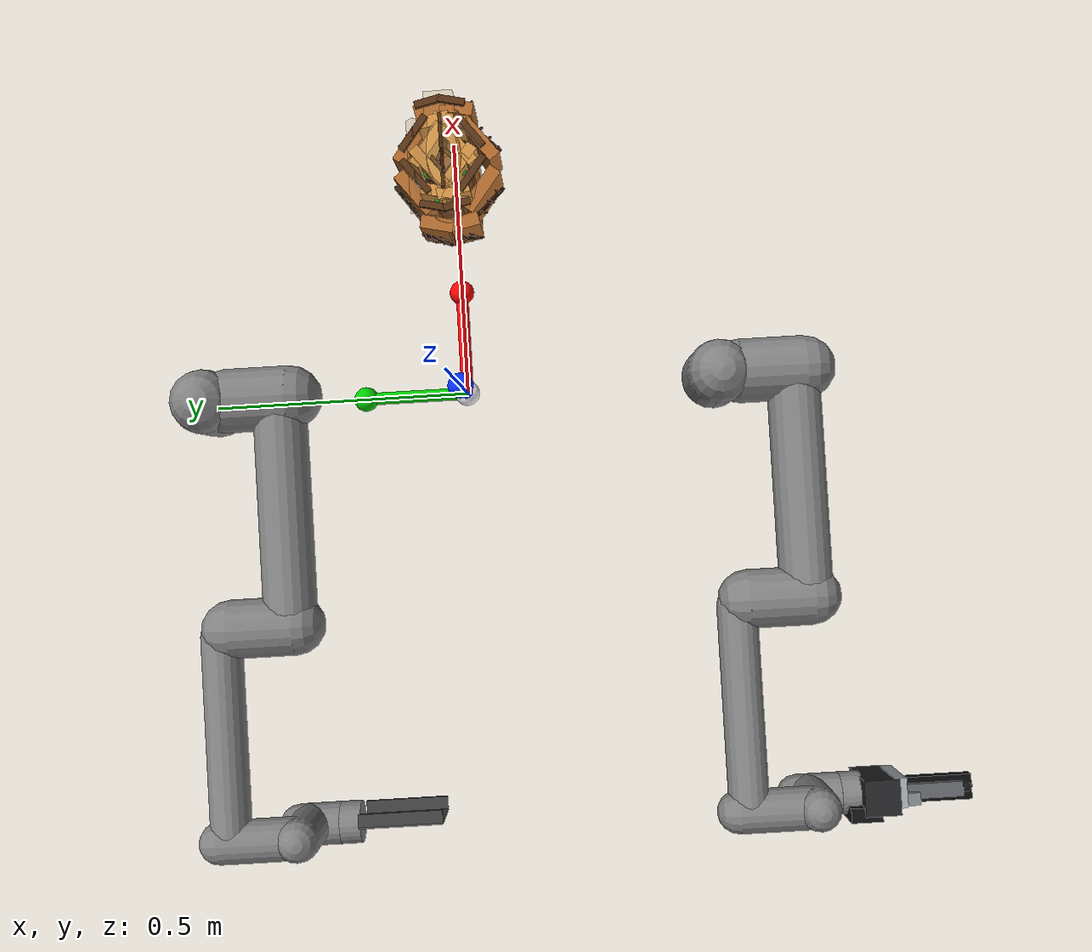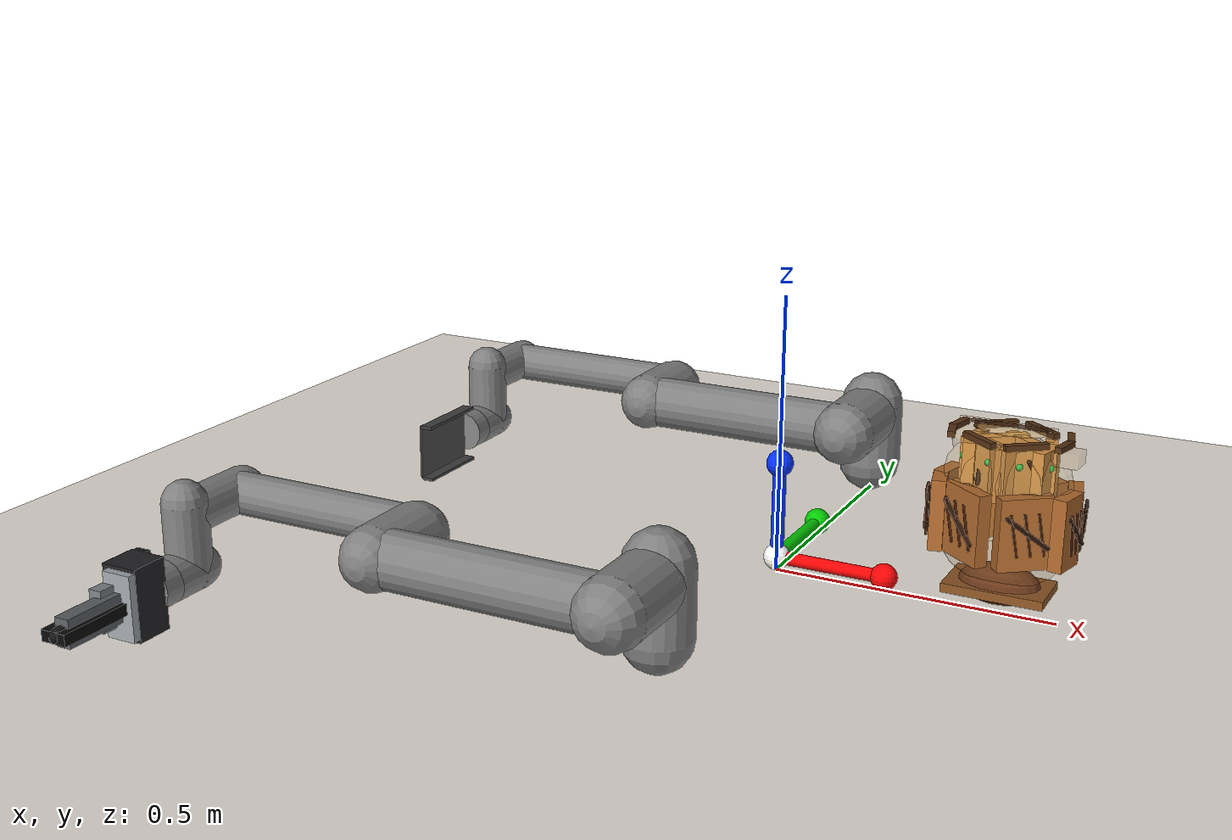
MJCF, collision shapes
<mujoco model="dual_ur5_shape_coupled_sack_underfilled">
  <compiler angle="degree" meshdir="D:\Michael\2025\01.Research\01.Parceldetection\16.Pybullet\mujoco_menagerie\universal_robots_ur5e\assets" autolimits="true" inertiafromgeom="true" />
  <option integrator="implicitfast" timestep="0.001000" gravity="0 0 -9.81" solver="Newton" iterations="120" ls_iterations="30" jacobian="sparse" cone="elliptic" impratio="10.0" />
  <size memory="512M" nconmax="8000" />
  <statistic center="0.55 0 0.45" extent="1.6" />
  <visual>
    <headlight diffuse="0.6 0.6 0.6" ambient="0.1 0.1 0.1" specular="0 0 0" />
    <rgba haze="0.15 0.25 0.35 1" />
    <global azimuth="120" elevation="-20" offwidth="1280" offheight="820" />
  </visual>
  <asset>
    <material class="ur5e" name="black" rgba="0.033 0.033 0.033 1" />
    <material class="ur5e" name="jointgray" rgba="0.278 0.278 0.278 1" />
    <material class="ur5e" name="linkgray" rgba="0.82 0.82 0.82 1" />
    <material class="ur5e" name="urblue" rgba="0.49 0.678 0.8 1" />
    <mesh file="base_0.obj" />
    <mesh file="base_1.obj" />
    <mesh file="shoulder_0.obj" />
    <mesh file="shoulder_1.obj" />
    <mesh file="shoulder_2.obj" />
    <mesh file="upperarm_0.obj" />
    <mesh file="upperarm_1.obj" />
    <mesh file="upperarm_2.obj" />
    <mesh file="upperarm_3.obj" />
    <mesh file="forearm_0.obj" />
    <mesh file="forearm_1.obj" />
    <mesh file="forearm_2.obj" />
    <mesh file="forearm_3.obj" />
    <mesh file="wrist1_0.obj" />
    <mesh file="wrist1_1.obj" />
    <mesh file="wrist1_2.obj" />
    <mesh file="wrist2_0.obj" />
    <mesh file="wrist2_1.obj" />
    <mesh file="wrist2_2.obj" />
    <mesh file="wrist3.obj" />
  </asset>
  <default>
    <default class="ur5e">
      <material specular="0.5" shininess="0.25" />
      <joint axis="0 1 0" range="-360.000269 360.000269" armature="0.1" />
      <general gaintype="fixed" biastype="affine" ctrlrange="-6.2831 6.2831" gainprm="2000" biasprm="0 -2000 -400" forcerange="-150 150" />
      <default class="size3">
        <default class="size3_limited">
          <joint range="-179.994691 179.994691" />
          <general ctrlrange="-3.1415 3.1415" />
        </default>
      </default>
      <default class="size1">
        <general gainprm="500" biasprm="0 -500 -100" forcerange="-28 28" />
      </default>
      <default class="visual">
        <geom type="mesh" contype="0" conaffinity="0" group="2" />
      </default>
      <default class="collision">
        <geom type="capsule" group="3" />
        <default class="eef_collision">
          <geom type="cylinder" />
        </default>
      </default>
      <site size="0.001" rgba="0.5 0.5 0.5 0.3" group="4" />
    </default>
  </default>
  <worldbody>
    <light name="main_light" pos="0 0 1.8" dir="0 0 -1" directional="true" />
    <geom name="floor" type="plane" size="2 2 0.05" rgba="0.92 0.90 0.86 0.18" friction="0.9 0.02 0.002" condim="4" />
    <camera name="overview" pos="1.65 0 1.0" xyaxes="0 1 0 -0.42 0 0.91" />
    <camera name="front" pos="1.02 0 0.42" xyaxes="0 1 0 -0.22 0 0.98" />
    <body name="world_origin_axes" pos="0 0 0">
      <geom name="origin_axis_marker" type="sphere" pos="0 0 0.024" size="0.024" rgba="1 1 1 1" contype="0" conaffinity="0" group="0" />
      <geom name="origin_axis_x" type="capsule" fromto="0 0 0.024 0.20 0 0.024" size="0.012" rgba="1 0.02 0.02 1" contype="0" conaffinity="0" group="0" />
      <geom name="origin_axis_x_end" type="sphere" pos="0.20 0 0.024" size="0.024" rgba="1 0.02 0.02 1" contype="0" conaffinity="0" group="0" />
      <geom name="origin_axis_y" type="capsule" fromto="0 0 0.024 0 0.20 0.024" size="0.012" rgba="0.02 0.8 0.02 1" contype="0" conaffinity="0" group="0" />
      <geom name="origin_axis_y_end" type="sphere" pos="0 0.20 0.024" size="0.024" rgba="0.02 0.8 0.02 1" contype="0" conaffinity="0" group="0" />
      <geom name="origin_axis_z" type="capsule" fromto="0 0 0.024 0 0 0.20" size="0.012" rgba="0.02 0.2 1 1" contype="0" conaffinity="0" group="0" />
      <geom name="origin_axis_z_end" type="sphere" pos="0 0 0.20" size="0.024" rgba="0.02 0.2 1 1" contype="0" conaffinity="0" group="0" />
    </body>
    <body name="left_base" quat="0 0 0 -1" childclass="ur5e" pos="0.000000 -0.480000 0.000000">
      <inertial mass="4.0" pos="0 0 0" diaginertia="0.00443333156 0.00443333156 0.0072" />
      <geom mesh="base_0" material="black" class="visual" />
      <geom mesh="base_1" material="jointgray" class="visual" />
      <body name="left_shoulder_link" pos="0 0 0.163">
        <inertial mass="3.7" pos="0 0 0" diaginertia="0.0102675 0.0102675 0.00666" />
        <joint name="left_shoulder_pan_joint" class="size3" axis="0 0 1" />
        <geom mesh="shoulder_0" material="urblue" class="visual" />
        <geom mesh="shoulder_1" material="black" class="visual" />
        <geom mesh="shoulder_2" material="jointgray" class="visual" />
        <geom class="collision" size="0.06 0.06" pos="0 0 -0.04" />
        <body name="left_upper_arm_link" pos="0 0.138 0" quat="1 0 1 0">
          <inertial mass="8.393" pos="0 0 0.2125" diaginertia="0.133886 0.133886 0.0151074" />
          <joint name="left_shoulder_lift_joint" class="size3" />
          <geom mesh="upperarm_0" material="linkgray" class="visual" />
          <geom mesh="upperarm_1" material="black" class="visual" />
          <geom mesh="upperarm_2" material="jointgray" class="visual" />
          <geom mesh="upperarm_3" material="urblue" class="visual" />
          <geom class="collision" pos="0 -0.04 0" quat="1 1 0 0" size="0.06 0.06" />
          <geom class="collision" size="0.05 0.2" pos="0 0 0.2" />
          <body name="left_forearm_link" pos="0 -0.131 0.425">
            <inertial mass="2.275" pos="0 0 0.196" diaginertia="0.0311796 0.0311796 0.004095" />
            <joint name="left_elbow_joint" class="size3_limited" />
            <geom mesh="forearm_0" material="urblue" class="visual" />
            <geom mesh="forearm_1" material="linkgray" class="visual" />
            <geom mesh="forearm_2" material="black" class="visual" />
            <geom mesh="forearm_3" material="jointgray" class="visual" />
            <geom class="collision" pos="0 0.08 0" quat="1 1 0 0" size="0.055 0.06" />
            <geom class="collision" size="0.038 0.19" pos="0 0 0.2" />
            <body name="left_wrist_1_link" pos="0 0 0.392" quat="1 0 1 0">
              <inertial mass="1.219" pos="0 0.127 0" diaginertia="0.0025599 0.0025599 0.0021942" />
              <joint name="left_wrist_1_joint" class="size1" />
              <geom mesh="wrist1_0" material="black" class="visual" />
              <geom mesh="wrist1_1" material="urblue" class="visual" />
              <geom mesh="wrist1_2" material="jointgray" class="visual" />
              <geom class="collision" pos="0 0.05 0" quat="1 1 0 0" size="0.04 0.07" />
              <body name="left_wrist_2_link" pos="0 0.127 0">
                <inertial mass="1.219" pos="0 0 0.1" diaginertia="0.0025599 0.0025599 0.0021942" />
                <joint name="left_wrist_2_joint" axis="0 0 1" class="size1" />
                <geom mesh="wrist2_0" material="black" class="visual" />
                <geom mesh="wrist2_1" material="urblue" class="visual" />
                <geom mesh="wrist2_2" material="jointgray" class="visual" />
                <geom class="collision" size="0.04 0.06" pos="0 0 0.04" />
                <geom class="collision" pos="0 0.02 0.1" quat="1 1 0 0" size="0.04 0.04" />
                <body name="left_wrist_3_link" pos="0 0 0.1">
                  <inertial mass="0.1889" pos="0 0.0771683 0" quat="1 0 0 1" diaginertia="0.000132134 9.90863e-05 9.90863e-05" />
                  <joint name="left_wrist_3_joint" class="size1" />
                  <geom material="linkgray" mesh="wrist3" class="visual" />
                  <geom class="eef_collision" pos="0 0.08 0" quat="1 1 0 0" size="0.04 0.02" />
                  <site name="left_attachment_site" pos="0 0.1 0" quat="-1 1 0 0" />
                  <body name="left_gripper_base" pos="0 0.10 0" quat="-1 1 0 0">
                    <geom name="left_robotiq_mount" type="box" pos="-0.032 0 0.000" size="0.014 0.056 0.030" rgba="0.06 0.06 0.065 1" contype="0" conaffinity="0" />
                    <geom name="left_gripper_palm" type="box" pos="0 0 0.030" size="0.034 0.064 0.034" rgba="0.13 0.13 0.14 1" contype="0" conaffinity="0" />
                    <geom name="left_robotiq_silver_face" type="box" pos="0.006 0 0.066" size="0.028 0.058 0.012" rgba="0.62 0.64 0.66 1" contype="0" conaffinity="0" />
                    <body name="left_finger_l_body" pos="0 0 0.092">
                      <joint name="left_finger_l" type="slide" axis="0 1 0" limited="true" range="0.010 0.080" damping="22" />
                      <geom name="left_finger_l_outer_knuckle" type="box" pos="-0.012 0.027 -0.030" size="0.012 0.010 0.046" rgba="0.48 0.50 0.52 1" contype="0" conaffinity="0" />
                      <geom name="left_finger_l_inner_link" type="box" pos="0.000 0.017 0.030" size="0.014 0.008 0.072" rgba="0.36 0.37 0.39 1" contype="0" conaffinity="0" />
                      <geom name="left_finger_l_tip_round" type="capsule" fromto="0 0 0.088 0 0 0.112" size="0.014" rgba="0.08 0.08 0.085 1" contype="0" conaffinity="0" />
                      <geom name="left_finger_l_pad" type="box" pos="0 0 0.044" size="0.024 0.0100 0.078" rgba="0.03 0.03 0.032 1" friction="2.4 0.12 0.01" condim="4" margin="0.0015" solref="0.030 1" solimp="0.78 0.94 0.001" />
                    </body>
                    <body name="left_finger_r_body" pos="0 0 0.092">
                      <joint name="left_finger_r" type="slide" axis="0 -1 0" limited="true" range="0.010 0.080" damping="22" />
                      <geom name="left_finger_r_outer_knuckle" type="box" pos="-0.012 -0.027 -0.030" size="0.012 0.010 0.046" rgba="0.48 0.50 0.52 1" contype="0" conaffinity="0" />
                      <geom name="left_finger_r_inner_link" type="box" pos="0.000 -0.017 0.030" size="0.014 0.008 0.072" rgba="0.36 0.37 0.39 1" contype="0" conaffinity="0" />
                      <geom name="left_finger_r_tip_round" type="capsule" fromto="0 0 0.088 0 0 0.112" size="0.014" rgba="0.08 0.08 0.085 1" contype="0" conaffinity="0" />
                      <geom name="left_finger_r_pad" type="box" pos="0 0 0.044" size="0.024 0.0100 0.078" rgba="0.03 0.03 0.032 1" friction="2.4 0.12 0.01" condim="4" margin="0.0015" solref="0.030 1" solimp="0.78 0.94 0.001" />
                    </body>
                    <site name="left_gripper_pinch" pos="0 0 0.150" size="0.006" rgba="1 0 0 1" />
                  </body>
                </body>
              </body>
            </body>
          </body>
        </body>
      </body>
    </body>
    <body name="right_base" quat="0 0 0 -1" childclass="ur5e" pos="0.000000 0.480000 0.000000">
      <inertial mass="4.0" pos="0 0 0" diaginertia="0.00443333156 0.00443333156 0.0072" />
      <geom mesh="base_0" material="black" class="visual" />
      <geom mesh="base_1" material="jointgray" class="visual" />
      <body name="right_shoulder_link" pos="0 0 0.163">
        <inertial mass="3.7" pos="0 0 0" diaginertia="0.0102675 0.0102675 0.00666" />
        <joint name="right_shoulder_pan_joint" class="size3" axis="0 0 1" />
        <geom mesh="shoulder_0" material="urblue" class="visual" />
        <geom mesh="shoulder_1" material="black" class="visual" />
        <geom mesh="shoulder_2" material="jointgray" class="visual" />
        <geom class="collision" size="0.06 0.06" pos="0 0 -0.04" />
        <body name="right_upper_arm_link" pos="0 0.138 0" quat="1 0 1 0">
          <inertial mass="8.393" pos="0 0 0.2125" diaginertia="0.133886 0.133886 0.0151074" />
          <joint name="right_shoulder_lift_joint" class="size3" />
          <geom mesh="upperarm_0" material="linkgray" class="visual" />
          <geom mesh="upperarm_1" material="black" class="visual" />
          <geom mesh="upperarm_2" material="jointgray" class="visual" />
          <geom mesh="upperarm_3" material="urblue" class="visual" />
          <geom class="collision" pos="0 -0.04 0" quat="1 1 0 0" size="0.06 0.06" />
          <geom class="collision" size="0.05 0.2" pos="0 0 0.2" />
          <body name="right_forearm_link" pos="0 -0.131 0.425">
            <inertial mass="2.275" pos="0 0 0.196" diaginertia="0.0311796 0.0311796 0.004095" />
            <joint name="right_elbow_joint" class="size3_limited" />
            <geom mesh="forearm_0" material="urblue" class="visual" />
            <geom mesh="forearm_1" material="linkgray" class="visual" />
            <geom mesh="forearm_2" material="black" class="visual" />
            <geom mesh="forearm_3" material="jointgray" class="visual" />
            <geom class="collision" pos="0 0.08 0" quat="1 1 0 0" size="0.055 0.06" />
            <geom class="collision" size="0.038 0.19" pos="0 0 0.2" />
            <body name="right_wrist_1_link" pos="0 0 0.392" quat="1 0 1 0">
              <inertial mass="1.219" pos="0 0.127 0" diaginertia="0.0025599 0.0025599 0.0021942" />
              <joint name="right_wrist_1_joint" class="size1" />
              <geom mesh="wrist1_0" material="black" class="visual" />
              <geom mesh="wrist1_1" material="urblue" class="visual" />
              <geom mesh="wrist1_2" material="jointgray" class="visual" />
              <geom class="collision" pos="0 0.05 0" quat="1 1 0 0" size="0.04 0.07" />
              <body name="right_wrist_2_link" pos="0 0.127 0">
                <inertial mass="1.219" pos="0 0 0.1" diaginertia="0.0025599 0.0025599 0.0021942" />
                <joint name="right_wrist_2_joint" axis="0 0 1" class="size1" />
                <geom mesh="wrist2_0" material="black" class="visual" />
                <geom mesh="wrist2_1" material="urblue" class="visual" />
                <geom mesh="wrist2_2" material="jointgray" class="visual" />
                <geom class="collision" size="0.04 0.06" pos="0 0 0.04" />
                <geom class="collision" pos="0 0.02 0.1" quat="1 1 0 0" size="0.04 0.04" />
                <body name="right_wrist_3_link" pos="0 0 0.1">
                  <inertial mass="0.1889" pos="0 0.0771683 0" quat="1 0 0 1" diaginertia="0.000132134 9.90863e-05 9.90863e-05" />
                  <joint name="right_wrist_3_joint" class="size1" />
                  <geom material="linkgray" mesh="wrist3" class="visual" />
                  <geom class="eef_collision" pos="0 0.08 0" quat="1 1 0 0" size="0.04 0.02" />
                  <site name="right_attachment_site" pos="0 0.1 0" quat="-1 1 0 0" />
                  <body name="right_scoop_tool" pos="0 0.10 0" euler="90 180 0">
                    <geom name="right_scoop_plate" type="box" pos="0 0 0.080" size="0.002 0.055 0.080" mass="0.055" rgba="0.30 0.30 0.30 1" friction="1.6 0.05 0.01" />
                    <geom name="right_scoop_left_rail" type="box" pos="-0.014 0.055 0.080" size="0.012 0.003 0.080" mass="0.012" rgba="0.25 0.25 0.25 1" />
                    <geom name="right_scoop_right_rail" type="box" pos="-0.014 -0.055 0.080" size="0.012 0.003 0.080" mass="0.012" rgba="0.25 0.25 0.25 1" />
                    <site name="right_scoop_site" pos="-0.004 0 0.080" size="0.006" rgba="0 0 1 1" />
                    <site name="right_scoop_tip_site" pos="-0.004 0 0.160" size="0.005" rgba="0 0.7 1 1" />
                  </body>
                </body>
              </body>
            </body>
          </body>
        </body>
      </body>
    </body>
    <body name="bag_frame" pos="0.400000 0.000000 0.188000">
      <freejoint name="bag_frame_freejoint" />
      <site name="bag_frame_origin" pos="0 0 0" size="0.006" rgba="1 0 0 0.7" />
      <geom friction="1.35 0.08 0.006" condim="4" solref="0.026 1" solimp="0.82 0.96 0.001" name="bag_mouse_handle" type="sphere" pos="0 0 0.020" size="0.020" mass="0.001" rgba="0.10 0.35 1.00 0.24" contype="0" conaffinity="0" />
      <body name="seam_band_00" pos="0.092184 0.020506 0.126000" euler="0 0 102.541136">
        <geom friction="1.35 0.08 0.006" condim="4" solref="0.026 1" solimp="0.82 0.96 0.001" name="seam_band_00_geom" type="box" size="0.024343 0.006000 0.005000" mass="0.016" rgba="0.35 0.20 0.08 0.90" />
        <site name="grasp_seam_00" pos="0 0 0" size="0.005" rgba="1 0.55 0.12 0.90" />
      </body>
      <body name="seam_band_01" pos="0.038184 0.049506 0.126000" euler="0 0 142.357206">
        <geom friction="1.35 0.08 0.006" condim="4" solref="0.026 1" solimp="0.82 0.96 0.001" name="seam_band_01_geom" type="box" size="0.036770 0.006000 0.005000" mass="0.016" rgba="0.35 0.20 0.08 0.90" />
        <site name="grasp_seam_01" pos="0 0 0" size="0.005" rgba="1 0.55 0.12 0.90" />
      </body>
      <body name="seam_band_02" pos="-0.038184 0.049506 0.126000" euler="0 0 217.642794">
        <geom friction="1.35 0.08 0.006" condim="4" solref="0.026 1" solimp="0.82 0.96 0.001" name="seam_band_02_geom" type="box" size="0.036770 0.006000 0.005000" mass="0.016" rgba="0.35 0.20 0.08 0.90" />
        <site name="grasp_seam_02" pos="0 0 0" size="0.005" rgba="1 0.55 0.12 0.90" />
      </body>
      <body name="seam_band_03" pos="-0.092184 0.020506 0.126000" euler="0 0 257.458864">
        <geom friction="1.35 0.08 0.006" condim="4" solref="0.026 1" solimp="0.82 0.96 0.001" name="seam_band_03_geom" type="box" size="0.024343 0.006000 0.005000" mass="0.016" rgba="0.35 0.20 0.08 0.90" />
        <site name="grasp_seam_03" pos="0 0 0" size="0.005" rgba="1 0.55 0.12 0.90" />
      </body>
      <body name="seam_band_04" pos="-0.092184 -0.020506 0.126000" euler="0 0 -77.458864">
        <geom friction="1.35 0.08 0.006" condim="4" solref="0.026 1" solimp="0.82 0.96 0.001" name="seam_band_04_geom" type="box" size="0.024343 0.006000 0.005000" mass="0.016" rgba="0.35 0.20 0.08 0.90" />
        <site name="grasp_seam_04" pos="0 0 0" size="0.005" rgba="1 0.55 0.12 0.90" />
      </body>
      <body name="seam_band_05" pos="-0.038184 -0.049506 0.126000" euler="0 0 -37.642794">
        <geom friction="1.35 0.08 0.006" condim="4" solref="0.026 1" solimp="0.82 0.96 0.001" name="seam_band_05_geom" type="box" size="0.036770 0.006000 0.005000" mass="0.016" rgba="0.35 0.20 0.08 0.90" />
        <site name="grasp_seam_05" pos="0 0 0" size="0.005" rgba="1 0.55 0.12 0.90" />
      </body>
      <body name="seam_band_06" pos="0.038184 -0.049506 0.126000" euler="0 0 37.642794">
        <geom friction="1.35 0.08 0.006" condim="4" solref="0.026 1" solimp="0.82 0.96 0.001" name="seam_band_06_geom" type="box" size="0.036770 0.006000 0.005000" mass="0.016" rgba="0.35 0.20 0.08 0.90" />
        <site name="grasp_seam_06" pos="0 0 0" size="0.005" rgba="1 0.55 0.12 0.90" />
      </body>
      <body name="seam_band_07" pos="0.092184 -0.020506 0.126000" euler="0 0 77.458864">
        <geom friction="1.35 0.08 0.006" condim="4" solref="0.026 1" solimp="0.82 0.96 0.001" name="seam_band_07_geom" type="box" size="0.024343 0.006000 0.005000" mass="0.016" rgba="0.35 0.20 0.08 0.90" />
        <site name="grasp_seam_07" pos="0 0 0" size="0.005" rgba="1 0.55 0.12 0.90" />
      </body>
      <body name="shoulder_panel_00" pos="0.092184 0.020506 0.116000" euler="0 0 102.541136">
        <joint name="shoulder_panel_00_hinge" type="hinge" axis="1 0 0" limited="true" range="-44 52" damping="10.500" stiffness="1.100" />
        <geom friction="1.35 0.08 0.006" condim="4" solref="0.026 1" solimp="0.82 0.96 0.001" name="shoulder_panel_00_geom" type="box" pos="0 0.030000 -0.045000" size="0.029005 0.010000 0.045000" mass="0.030" rgba="0.84 0.58 0.27 0.10" />
        <geom friction="1.35 0.08 0.006" condim="4" solref="0.026 1" solimp="0.82 0.96 0.001" name="shoulder_panel_00_shape_cue" type="capsule" fromto="-0.023307 0.048000 -0.020000 0.023307 0.048000 -0.070000" size="0.0035" mass="0.001" rgba="0.18 0.08 0.02 0.95" contype="0" conaffinity="0" />
        <geom friction="1.35 0.08 0.006" condim="4" solref="0.026 1" solimp="0.82 0.96 0.001" name="shoulder_panel_00_wrinkle_0" type="capsule" fromto="-0.020502 0.050000 -0.018 -0.008502 0.046000 -0.080" size="0.0022" mass="0.0002" rgba="0.24 0.11 0.03 0.82" contype="0" conaffinity="0" />
        <geom friction="1.35 0.08 0.006" condim="4" solref="0.026 1" solimp="0.82 0.96 0.001" name="shoulder_panel_00_wrinkle_1" type="capsule" fromto="-0.006000 0.050000 -0.018 0.006000 0.046000 -0.080" size="0.0022" mass="0.0002" rgba="0.24 0.11 0.03 0.82" contype="0" conaffinity="0" />
        <geom friction="1.35 0.08 0.006" condim="4" solref="0.026 1" solimp="0.82 0.96 0.001" name="shoulder_panel_00_wrinkle_2" type="capsule" fromto="0.008502 0.050000 -0.018 0.020502 0.046000 -0.080" size="0.0022" mass="0.0002" rgba="0.24 0.11 0.03 0.82" contype="0" conaffinity="0" />
        <site name="grasp_shoulder_00" pos="0 0.021000 -0.031500" size="0.006" rgba="0.10 0.75 0.25 0.90" />
      </body>
      <body name="shoulder_panel_01" pos="0.038184 0.049506 0.116000" euler="0 0 142.357206">
        <joint name="shoulder_panel_01_hinge" type="hinge" axis="1 0 0" limited="true" range="-44 52" damping="10.500" stiffness="1.100" />
        <geom friction="1.35 0.08 0.006" condim="4" solref="0.026 1" solimp="0.82 0.96 0.001" name="shoulder_panel_01_geom" type="box" pos="0 0.030000 -0.045000" size="0.043811 0.010000 0.045000" mass="0.030" rgba="0.84 0.58 0.27 0.10" />
        <geom friction="1.35 0.08 0.006" condim="4" solref="0.026 1" solimp="0.82 0.96 0.001" name="shoulder_panel_01_shape_cue" type="capsule" fromto="-0.035205 0.048000 -0.020000 0.035205 0.048000 -0.070000" size="0.0035" mass="0.001" rgba="0.18 0.08 0.02 0.95" contype="0" conaffinity="0" />
        <geom friction="1.35 0.08 0.006" condim="4" solref="0.026 1" solimp="0.82 0.96 0.001" name="shoulder_panel_01_wrinkle_0" type="capsule" fromto="-0.027906 0.050000 -0.018 -0.015906 0.046000 -0.080" size="0.0022" mass="0.0002" rgba="0.24 0.11 0.03 0.82" contype="0" conaffinity="0" />
        <geom friction="1.35 0.08 0.006" condim="4" solref="0.026 1" solimp="0.82 0.96 0.001" name="shoulder_panel_01_wrinkle_1" type="capsule" fromto="-0.006000 0.050000 -0.018 0.006000 0.046000 -0.080" size="0.0022" mass="0.0002" rgba="0.24 0.11 0.03 0.82" contype="0" conaffinity="0" />
        <geom friction="1.35 0.08 0.006" condim="4" solref="0.026 1" solimp="0.82 0.96 0.001" name="shoulder_panel_01_wrinkle_2" type="capsule" fromto="0.015906 0.050000 -0.018 0.027906 0.046000 -0.080" size="0.0022" mass="0.0002" rgba="0.24 0.11 0.03 0.82" contype="0" conaffinity="0" />
        <site name="grasp_shoulder_01" pos="0 0.021000 -0.031500" size="0.006" rgba="0.10 0.75 0.25 0.90" />
      </body>
      <body name="shoulder_panel_02" pos="-0.038184 0.049506 0.116000" euler="0 0 217.642794">
        <joint name="shoulder_panel_02_hinge" type="hinge" axis="1 0 0" limited="true" range="-44 52" damping="10.500" stiffness="1.100" />
        <geom friction="1.35 0.08 0.006" condim="4" solref="0.026 1" solimp="0.82 0.96 0.001" name="shoulder_panel_02_geom" type="box" pos="0 0.030000 -0.045000" size="0.043811 0.010000 0.045000" mass="0.030" rgba="0.84 0.58 0.27 0.10" />
        <geom friction="1.35 0.08 0.006" condim="4" solref="0.026 1" solimp="0.82 0.96 0.001" name="shoulder_panel_02_shape_cue" type="capsule" fromto="-0.035205 0.048000 -0.020000 0.035205 0.048000 -0.070000" size="0.0035" mass="0.001" rgba="0.18 0.08 0.02 0.95" contype="0" conaffinity="0" />
        <geom friction="1.35 0.08 0.006" condim="4" solref="0.026 1" solimp="0.82 0.96 0.001" name="shoulder_panel_02_wrinkle_0" type="capsule" fromto="-0.027906 0.050000 -0.018 -0.015906 0.046000 -0.080" size="0.0022" mass="0.0002" rgba="0.24 0.11 0.03 0.82" contype="0" conaffinity="0" />
        <geom friction="1.35 0.08 0.006" condim="4" solref="0.026 1" solimp="0.82 0.96 0.001" name="shoulder_panel_02_wrinkle_1" type="capsule" fromto="-0.006000 0.050000 -0.018 0.006000 0.046000 -0.080" size="0.0022" mass="0.0002" rgba="0.24 0.11 0.03 0.82" contype="0" conaffinity="0" />
        <geom friction="1.35 0.08 0.006" condim="4" solref="0.026 1" solimp="0.82 0.96 0.001" name="shoulder_panel_02_wrinkle_2" type="capsule" fromto="0.015906 0.050000 -0.018 0.027906 0.046000 -0.080" size="0.0022" mass="0.0002" rgba="0.24 0.11 0.03 0.82" contype="0" conaffinity="0" />
        <site name="grasp_shoulder_02" pos="0 0.021000 -0.031500" size="0.006" rgba="0.10 0.75 0.25 0.90" />
      </body>
      <body name="shoulder_panel_03" pos="-0.092184 0.020506 0.116000" euler="0 0 257.458864">
        <joint name="shoulder_panel_03_hinge" type="hinge" axis="1 0 0" limited="true" range="-44 52" damping="10.500" stiffness="1.100" />
        <geom friction="1.35 0.08 0.006" condim="4" solref="0.026 1" solimp="0.82 0.96 0.001" name="shoulder_panel_03_geom" type="box" pos="0 0.030000 -0.045000" size="0.029005 0.010000 0.045000" mass="0.030" rgba="0.84 0.58 0.27 0.10" />
        <geom friction="1.35 0.08 0.006" condim="4" solref="0.026 1" solimp="0.82 0.96 0.001" name="shoulder_panel_03_shape_cue" type="capsule" fromto="-0.023307 0.048000 -0.020000 0.023307 0.048000 -0.070000" size="0.0035" mass="0.001" rgba="0.18 0.08 0.02 0.95" contype="0" conaffinity="0" />
        <geom friction="1.35 0.08 0.006" condim="4" solref="0.026 1" solimp="0.82 0.96 0.001" name="shoulder_panel_03_wrinkle_0" type="capsule" fromto="-0.020502 0.050000 -0.018 -0.008502 0.046000 -0.080" size="0.0022" mass="0.0002" rgba="0.24 0.11 0.03 0.82" contype="0" conaffinity="0" />
        <geom friction="1.35 0.08 0.006" condim="4" solref="0.026 1" solimp="0.82 0.96 0.001" name="shoulder_panel_03_wrinkle_1" type="capsule" fromto="-0.006000 0.050000 -0.018 0.006000 0.046000 -0.080" size="0.0022" mass="0.0002" rgba="0.24 0.11 0.03 0.82" contype="0" conaffinity="0" />
        <geom friction="1.35 0.08 0.006" condim="4" solref="0.026 1" solimp="0.82 0.96 0.001" name="shoulder_panel_03_wrinkle_2" type="capsule" fromto="0.008502 0.050000 -0.018 0.020502 0.046000 -0.080" size="0.0022" mass="0.0002" rgba="0.24 0.11 0.03 0.82" contype="0" conaffinity="0" />
        <site name="grasp_shoulder_03" pos="0 0.021000 -0.031500" size="0.006" rgba="0.10 0.75 0.25 0.90" />
      </body>
      <body name="shoulder_panel_04" pos="-0.092184 -0.020506 0.116000" euler="0 0 -77.458864">
        <joint name="shoulder_panel_04_hinge" type="hinge" axis="1 0 0" limited="true" range="-44 52" damping="10.500" stiffness="1.100" />
        <geom friction="1.35 0.08 0.006" condim="4" solref="0.026 1" solimp="0.82 0.96 0.001" name="shoulder_panel_04_geom" type="box" pos="0 0.030000 -0.045000" size="0.029005 0.010000 0.045000" mass="0.030" rgba="0.84 0.58 0.27 0.10" />
        <geom friction="1.35 0.08 0.006" condim="4" solref="0.026 1" solimp="0.82 0.96 0.001" name="shoulder_panel_04_shape_cue" type="capsule" fromto="-0.023307 0.048000 -0.020000 0.023307 0.048000 -0.070000" size="0.0035" mass="0.001" rgba="0.18 0.08 0.02 0.95" contype="0" conaffinity="0" />
        <geom friction="1.35 0.08 0.006" condim="4" solref="0.026 1" solimp="0.82 0.96 0.001" name="shoulder_panel_04_wrinkle_0" type="capsule" fromto="-0.020502 0.050000 -0.018 -0.008502 0.046000 -0.080" size="0.0022" mass="0.0002" rgba="0.24 0.11 0.03 0.82" contype="0" conaffinity="0" />
        <geom friction="1.35 0.08 0.006" condim="4" solref="0.026 1" solimp="0.82 0.96 0.001" name="shoulder_panel_04_wrinkle_1" type="capsule" fromto="-0.006000 0.050000 -0.018 0.006000 0.046000 -0.080" size="0.0022" mass="0.0002" rgba="0.24 0.11 0.03 0.82" contype="0" conaffinity="0" />
        <geom friction="1.35 0.08 0.006" condim="4" solref="0.026 1" solimp="0.82 0.96 0.001" name="shoulder_panel_04_wrinkle_2" type="capsule" fromto="0.008502 0.050000 -0.018 0.020502 0.046000 -0.080" size="0.0022" mass="0.0002" rgba="0.24 0.11 0.03 0.82" contype="0" conaffinity="0" />
        <site name="grasp_shoulder_04" pos="0 0.021000 -0.031500" size="0.006" rgba="0.10 0.75 0.25 0.90" />
      </body>
      <body name="shoulder_panel_05" pos="-0.038184 -0.049506 0.116000" euler="0 0 -37.642794">
        <joint name="shoulder_panel_05_hinge" type="hinge" axis="1 0 0" limited="true" range="-44 52" damping="10.500" stiffness="1.100" />
        <geom friction="1.35 0.08 0.006" condim="4" solref="0.026 1" solimp="0.82 0.96 0.001" name="shoulder_panel_05_geom" type="box" pos="0 0.030000 -0.045000" size="0.043811 0.010000 0.045000" mass="0.030" rgba="0.84 0.58 0.27 0.10" />
        <geom friction="1.35 0.08 0.006" condim="4" solref="0.026 1" solimp="0.82 0.96 0.001" name="shoulder_panel_05_shape_cue" type="capsule" fromto="-0.035205 0.048000 -0.020000 0.035205 0.048000 -0.070000" size="0.0035" mass="0.001" rgba="0.18 0.08 0.02 0.95" contype="0" conaffinity="0" />
        <geom friction="1.35 0.08 0.006" condim="4" solref="0.026 1" solimp="0.82 0.96 0.001" name="shoulder_panel_05_wrinkle_0" type="capsule" fromto="-0.027906 0.050000 -0.018 -0.015906 0.046000 -0.080" size="0.0022" mass="0.0002" rgba="0.24 0.11 0.03 0.82" contype="0" conaffinity="0" />
        <geom friction="1.35 0.08 0.006" condim="4" solref="0.026 1" solimp="0.82 0.96 0.001" name="shoulder_panel_05_wrinkle_1" type="capsule" fromto="-0.006000 0.050000 -0.018 0.006000 0.046000 -0.080" size="0.0022" mass="0.0002" rgba="0.24 0.11 0.03 0.82" contype="0" conaffinity="0" />
        <geom friction="1.35 0.08 0.006" condim="4" solref="0.026 1" solimp="0.82 0.96 0.001" name="shoulder_panel_05_wrinkle_2" type="capsule" fromto="0.015906 0.050000 -0.018 0.027906 0.046000 -0.080" size="0.0022" mass="0.0002" rgba="0.24 0.11 0.03 0.82" contype="0" conaffinity="0" />
        <site name="grasp_shoulder_05" pos="0 0.021000 -0.031500" size="0.006" rgba="0.10 0.75 0.25 0.90" />
      </body>
      <body name="shoulder_panel_06" pos="0.038184 -0.049506 0.116000" euler="0 0 37.642794">
        <joint name="shoulder_panel_06_hinge" type="hinge" axis="1 0 0" limited="true" range="-44 52" damping="10.500" stiffness="1.100" />
        <geom friction="1.35 0.08 0.006" condim="4" solref="0.026 1" solimp="0.82 0.96 0.001" name="shoulder_panel_06_geom" type="box" pos="0 0.030000 -0.045000" size="0.043811 0.010000 0.045000" mass="0.030" rgba="0.84 0.58 0.27 0.10" />
        <geom friction="1.35 0.08 0.006" condim="4" solref="0.026 1" solimp="0.82 0.96 0.001" name="shoulder_panel_06_shape_cue" type="capsule" fromto="-0.035205 0.048000 -0.020000 0.035205 0.048000 -0.070000" size="0.0035" mass="0.001" rgba="0.18 0.08 0.02 0.95" contype="0" conaffinity="0" />
        <geom friction="1.35 0.08 0.006" condim="4" solref="0.026 1" solimp="0.82 0.96 0.001" name="shoulder_panel_06_wrinkle_0" type="capsule" fromto="-0.027906 0.050000 -0.018 -0.015906 0.046000 -0.080" size="0.0022" mass="0.0002" rgba="0.24 0.11 0.03 0.82" contype="0" conaffinity="0" />
        <geom friction="1.35 0.08 0.006" condim="4" solref="0.026 1" solimp="0.82 0.96 0.001" name="shoulder_panel_06_wrinkle_1" type="capsule" fromto="-0.006000 0.050000 -0.018 0.006000 0.046000 -0.080" size="0.0022" mass="0.0002" rgba="0.24 0.11 0.03 0.82" contype="0" conaffinity="0" />
        <geom friction="1.35 0.08 0.006" condim="4" solref="0.026 1" solimp="0.82 0.96 0.001" name="shoulder_panel_06_wrinkle_2" type="capsule" fromto="0.015906 0.050000 -0.018 0.027906 0.046000 -0.080" size="0.0022" mass="0.0002" rgba="0.24 0.11 0.03 0.82" contype="0" conaffinity="0" />
        <site name="grasp_shoulder_06" pos="0 0.021000 -0.031500" size="0.006" rgba="0.10 0.75 0.25 0.90" />
      </body>
      <body name="shoulder_panel_07" pos="0.092184 -0.020506 0.116000" euler="0 0 77.458864">
        <joint name="shoulder_panel_07_hinge" type="hinge" axis="1 0 0" limited="true" range="-44 52" damping="10.500" stiffness="1.100" />
        <geom friction="1.35 0.08 0.006" condim="4" solref="0.026 1" solimp="0.82 0.96 0.001" name="shoulder_panel_07_geom" type="box" pos="0 0.030000 -0.045000" size="0.029005 0.010000 0.045000" mass="0.030" rgba="0.84 0.58 0.27 0.10" />
        <geom friction="1.35 0.08 0.006" condim="4" solref="0.026 1" solimp="0.82 0.96 0.001" name="shoulder_panel_07_shape_cue" type="capsule" fromto="-0.023307 0.048000 -0.020000 0.023307 0.048000 -0.070000" size="0.0035" mass="0.001" rgba="0.18 0.08 0.02 0.95" contype="0" conaffinity="0" />
        <geom friction="1.35 0.08 0.006" condim="4" solref="0.026 1" solimp="0.82 0.96 0.001" name="shoulder_panel_07_wrinkle_0" type="capsule" fromto="-0.020502 0.050000 -0.018 -0.008502 0.046000 -0.080" size="0.0022" mass="0.0002" rgba="0.24 0.11 0.03 0.82" contype="0" conaffinity="0" />
        <geom friction="1.35 0.08 0.006" condim="4" solref="0.026 1" solimp="0.82 0.96 0.001" name="shoulder_panel_07_wrinkle_1" type="capsule" fromto="-0.006000 0.050000 -0.018 0.006000 0.046000 -0.080" size="0.0022" mass="0.0002" rgba="0.24 0.11 0.03 0.82" contype="0" conaffinity="0" />
        <geom friction="1.35 0.08 0.006" condim="4" solref="0.026 1" solimp="0.82 0.96 0.001" name="shoulder_panel_07_wrinkle_2" type="capsule" fromto="0.008502 0.050000 -0.018 0.020502 0.046000 -0.080" size="0.0022" mass="0.0002" rgba="0.24 0.11 0.03 0.82" contype="0" conaffinity="0" />
        <site name="grasp_shoulder_07" pos="0 0.021000 -0.031500" size="0.006" rgba="0.10 0.75 0.25 0.90" />
      </body>
      <body name="belly_panel_00" pos="0.092184 0.020506 0.046800" euler="0 0 102.541136">
        <joint name="belly_panel_00_hinge" type="hinge" axis="1 0 0" limited="true" range="-54 64" damping="11.000" stiffness="1.700" />
        <geom friction="1.35 0.08 0.006" condim="4" solref="0.026 1" solimp="0.82 0.96 0.001" name="belly_panel_00_geom" type="box" pos="0 -0.014000 -0.062000" size="0.030040 0.012000 0.062000" mass="0.038" rgba="0.70 0.42 0.18 0.10" />
        <geom friction="1.35 0.08 0.006" condim="4" solref="0.026 1" solimp="0.82 0.96 0.001" name="belly_panel_00_shape_cue" type="capsule" fromto="-0.023825 -0.032000 -0.030000 0.023825 -0.032000 -0.085000" size="0.0038" mass="0.001" rgba="0.16 0.07 0.02 0.96" contype="0" conaffinity="0" />
        <geom friction="1.35 0.08 0.006" condim="4" solref="0.026 1" solimp="0.82 0.96 0.001" name="belly_panel_00_wrinkle_0" type="capsule" fromto="-0.023538 -0.034000 -0.024 -0.007538 -0.030000 -0.096720" size="0.0024" mass="0.0002" rgba="0.22 0.09 0.02 0.84" contype="0" conaffinity="0" />
        <geom friction="1.35 0.08 0.006" condim="4" solref="0.026 1" solimp="0.82 0.96 0.001" name="belly_panel_00_wrinkle_1" type="capsule" fromto="-0.008000 -0.034000 -0.024 0.008000 -0.030000 -0.096720" size="0.0024" mass="0.0002" rgba="0.22 0.09 0.02 0.84" contype="0" conaffinity="0" />
        <geom friction="1.35 0.08 0.006" condim="4" solref="0.026 1" solimp="0.82 0.96 0.001" name="belly_panel_00_wrinkle_2" type="capsule" fromto="0.007538 -0.034000 -0.024 0.023538 -0.030000 -0.096720" size="0.0024" mass="0.0002" rgba="0.22 0.09 0.02 0.84" contype="0" conaffinity="0" />
      </body>
      <body name="belly_panel_01" pos="0.038184 0.049506 0.046800" euler="0 0 142.357206">
        <joint name="belly_panel_01_hinge" type="hinge" axis="1 0 0" limited="true" range="-54 64" damping="11.000" stiffness="1.700" />
        <geom friction="1.35 0.08 0.006" condim="4" solref="0.026 1" solimp="0.82 0.96 0.001" name="belly_panel_01_geom" type="box" pos="0 -0.014000 -0.062000" size="0.045376 0.012000 0.062000" mass="0.038" rgba="0.70 0.42 0.18 0.10" />
        <geom friction="1.35 0.08 0.006" condim="4" solref="0.026 1" solimp="0.82 0.96 0.001" name="belly_panel_01_shape_cue" type="capsule" fromto="-0.035988 -0.032000 -0.030000 0.035988 -0.032000 -0.085000" size="0.0038" mass="0.001" rgba="0.16 0.07 0.02 0.96" contype="0" conaffinity="0" />
        <geom friction="1.35 0.08 0.006" condim="4" solref="0.026 1" solimp="0.82 0.96 0.001" name="belly_panel_01_wrinkle_0" type="capsule" fromto="-0.031470 -0.034000 -0.024 -0.015470 -0.030000 -0.096720" size="0.0024" mass="0.0002" rgba="0.22 0.09 0.02 0.84" contype="0" conaffinity="0" />
        <geom friction="1.35 0.08 0.006" condim="4" solref="0.026 1" solimp="0.82 0.96 0.001" name="belly_panel_01_wrinkle_1" type="capsule" fromto="-0.008000 -0.034000 -0.024 0.008000 -0.030000 -0.096720" size="0.0024" mass="0.0002" rgba="0.22 0.09 0.02 0.84" contype="0" conaffinity="0" />
        <geom friction="1.35 0.08 0.006" condim="4" solref="0.026 1" solimp="0.82 0.96 0.001" name="belly_panel_01_wrinkle_2" type="capsule" fromto="0.015470 -0.034000 -0.024 0.031470 -0.030000 -0.096720" size="0.0024" mass="0.0002" rgba="0.22 0.09 0.02 0.84" contype="0" conaffinity="0" />
      </body>
      <body name="belly_panel_02" pos="-0.038184 0.049506 0.046800" euler="0 0 217.642794">
        <joint name="belly_panel_02_hinge" type="hinge" axis="1 0 0" limited="true" range="-54 64" damping="11.000" stiffness="1.700" />
        <geom friction="1.35 0.08 0.006" condim="4" solref="0.026 1" solimp="0.82 0.96 0.001" name="belly_panel_02_geom" type="box" pos="0 -0.014000 -0.062000" size="0.045376 0.012000 0.062000" mass="0.038" rgba="0.70 0.42 0.18 0.10" />
        <geom friction="1.35 0.08 0.006" condim="4" solref="0.026 1" solimp="0.82 0.96 0.001" name="belly_panel_02_shape_cue" type="capsule" fromto="-0.035988 -0.032000 -0.030000 0.035988 -0.032000 -0.085000" size="0.0038" mass="0.001" rgba="0.16 0.07 0.02 0.96" contype="0" conaffinity="0" />
        <geom friction="1.35 0.08 0.006" condim="4" solref="0.026 1" solimp="0.82 0.96 0.001" name="belly_panel_02_wrinkle_0" type="capsule" fromto="-0.031470 -0.034000 -0.024 -0.015470 -0.030000 -0.096720" size="0.0024" mass="0.0002" rgba="0.22 0.09 0.02 0.84" contype="0" conaffinity="0" />
        <geom friction="1.35 0.08 0.006" condim="4" solref="0.026 1" solimp="0.82 0.96 0.001" name="belly_panel_02_wrinkle_1" type="capsule" fromto="-0.008000 -0.034000 -0.024 0.008000 -0.030000 -0.096720" size="0.0024" mass="0.0002" rgba="0.22 0.09 0.02 0.84" contype="0" conaffinity="0" />
        <geom friction="1.35 0.08 0.006" condim="4" solref="0.026 1" solimp="0.82 0.96 0.001" name="belly_panel_02_wrinkle_2" type="capsule" fromto="0.015470 -0.034000 -0.024 0.031470 -0.030000 -0.096720" size="0.0024" mass="0.0002" rgba="0.22 0.09 0.02 0.84" contype="0" conaffinity="0" />
      </body>
      <body name="belly_panel_03" pos="-0.092184 0.020506 0.046800" euler="0 0 257.458864">
        <joint name="belly_panel_03_hinge" type="hinge" axis="1 0 0" limited="true" range="-54 64" damping="11.000" stiffness="1.700" />
        <geom friction="1.35 0.08 0.006" condim="4" solref="0.026 1" solimp="0.82 0.96 0.001" name="belly_panel_03_geom" type="box" pos="0 -0.014000 -0.062000" size="0.030040 0.012000 0.062000" mass="0.038" rgba="0.70 0.42 0.18 0.10" />
        <geom friction="1.35 0.08 0.006" condim="4" solref="0.026 1" solimp="0.82 0.96 0.001" name="belly_panel_03_shape_cue" type="capsule" fromto="-0.023825 -0.032000 -0.030000 0.023825 -0.032000 -0.085000" size="0.0038" mass="0.001" rgba="0.16 0.07 0.02 0.96" contype="0" conaffinity="0" />
        <geom friction="1.35 0.08 0.006" condim="4" solref="0.026 1" solimp="0.82 0.96 0.001" name="belly_panel_03_wrinkle_0" type="capsule" fromto="-0.023538 -0.034000 -0.024 -0.007538 -0.030000 -0.096720" size="0.0024" mass="0.0002" rgba="0.22 0.09 0.02 0.84" contype="0" conaffinity="0" />
        <geom friction="1.35 0.08 0.006" condim="4" solref="0.026 1" solimp="0.82 0.96 0.001" name="belly_panel_03_wrinkle_1" type="capsule" fromto="-0.008000 -0.034000 -0.024 0.008000 -0.030000 -0.096720" size="0.0024" mass="0.0002" rgba="0.22 0.09 0.02 0.84" contype="0" conaffinity="0" />
        <geom friction="1.35 0.08 0.006" condim="4" solref="0.026 1" solimp="0.82 0.96 0.001" name="belly_panel_03_wrinkle_2" type="capsule" fromto="0.007538 -0.034000 -0.024 0.023538 -0.030000 -0.096720" size="0.0024" mass="0.0002" rgba="0.22 0.09 0.02 0.84" contype="0" conaffinity="0" />
      </body>
      <body name="belly_panel_04" pos="-0.092184 -0.020506 0.046800" euler="0 0 -77.458864">
        <joint name="belly_panel_04_hinge" type="hinge" axis="1 0 0" limited="true" range="-54 64" damping="11.000" stiffness="1.700" />
        <geom friction="1.35 0.08 0.006" condim="4" solref="0.026 1" solimp="0.82 0.96 0.001" name="belly_panel_04_geom" type="box" pos="0 -0.014000 -0.062000" size="0.030040 0.012000 0.062000" mass="0.038" rgba="0.70 0.42 0.18 0.10" />
        <geom friction="1.35 0.08 0.006" condim="4" solref="0.026 1" solimp="0.82 0.96 0.001" name="belly_panel_04_shape_cue" type="capsule" fromto="-0.023825 -0.032000 -0.030000 0.023825 -0.032000 -0.085000" size="0.0038" mass="0.001" rgba="0.16 0.07 0.02 0.96" contype="0" conaffinity="0" />
        <geom friction="1.35 0.08 0.006" condim="4" solref="0.026 1" solimp="0.82 0.96 0.001" name="belly_panel_04_wrinkle_0" type="capsule" fromto="-0.023538 -0.034000 -0.024 -0.007538 -0.030000 -0.096720" size="0.0024" mass="0.0002" rgba="0.22 0.09 0.02 0.84" contype="0" conaffinity="0" />
        <geom friction="1.35 0.08 0.006" condim="4" solref="0.026 1" solimp="0.82 0.96 0.001" name="belly_panel_04_wrinkle_1" type="capsule" fromto="-0.008000 -0.034000 -0.024 0.008000 -0.030000 -0.096720" size="0.0024" mass="0.0002" rgba="0.22 0.09 0.02 0.84" contype="0" conaffinity="0" />
        <geom friction="1.35 0.08 0.006" condim="4" solref="0.026 1" solimp="0.82 0.96 0.001" name="belly_panel_04_wrinkle_2" type="capsule" fromto="0.007538 -0.034000 -0.024 0.023538 -0.030000 -0.096720" size="0.0024" mass="0.0002" rgba="0.22 0.09 0.02 0.84" contype="0" conaffinity="0" />
      </body>
      <body name="belly_panel_05" pos="-0.038184 -0.049506 0.046800" euler="0 0 -37.642794">
        <joint name="belly_panel_05_hinge" type="hinge" axis="1 0 0" limited="true" range="-54 64" damping="11.000" stiffness="1.700" />
        <geom friction="1.35 0.08 0.006" condim="4" solref="0.026 1" solimp="0.82 0.96 0.001" name="belly_panel_05_geom" type="box" pos="0 -0.014000 -0.062000" size="0.045376 0.012000 0.062000" mass="0.038" rgba="0.70 0.42 0.18 0.10" />
        <geom friction="1.35 0.08 0.006" condim="4" solref="0.026 1" solimp="0.82 0.96 0.001" name="belly_panel_05_shape_cue" type="capsule" fromto="-0.035988 -0.032000 -0.030000 0.035988 -0.032000 -0.085000" size="0.0038" mass="0.001" rgba="0.16 0.07 0.02 0.96" contype="0" conaffinity="0" />
        <geom friction="1.35 0.08 0.006" condim="4" solref="0.026 1" solimp="0.82 0.96 0.001" name="belly_panel_05_wrinkle_0" type="capsule" fromto="-0.031470 -0.034000 -0.024 -0.015470 -0.030000 -0.096720" size="0.0024" mass="0.0002" rgba="0.22 0.09 0.02 0.84" contype="0" conaffinity="0" />
        <geom friction="1.35 0.08 0.006" condim="4" solref="0.026 1" solimp="0.82 0.96 0.001" name="belly_panel_05_wrinkle_1" type="capsule" fromto="-0.008000 -0.034000 -0.024 0.008000 -0.030000 -0.096720" size="0.0024" mass="0.0002" rgba="0.22 0.09 0.02 0.84" contype="0" conaffinity="0" />
        <geom friction="1.35 0.08 0.006" condim="4" solref="0.026 1" solimp="0.82 0.96 0.001" name="belly_panel_05_wrinkle_2" type="capsule" fromto="0.015470 -0.034000 -0.024 0.031470 -0.030000 -0.096720" size="0.0024" mass="0.0002" rgba="0.22 0.09 0.02 0.84" contype="0" conaffinity="0" />
      </body>
      <body name="belly_panel_06" pos="0.038184 -0.049506 0.046800" euler="0 0 37.642794">
        <joint name="belly_panel_06_hinge" type="hinge" axis="1 0 0" limited="true" range="-54 64" damping="11.000" stiffness="1.700" />
        <geom friction="1.35 0.08 0.006" condim="4" solref="0.026 1" solimp="0.82 0.96 0.001" name="belly_panel_06_geom" type="box" pos="0 -0.014000 -0.062000" size="0.045376 0.012000 0.062000" mass="0.038" rgba="0.70 0.42 0.18 0.10" />
        <geom friction="1.35 0.08 0.006" condim="4" solref="0.026 1" solimp="0.82 0.96 0.001" name="belly_panel_06_shape_cue" type="capsule" fromto="-0.035988 -0.032000 -0.030000 0.035988 -0.032000 -0.085000" size="0.0038" mass="0.001" rgba="0.16 0.07 0.02 0.96" contype="0" conaffinity="0" />
        <geom friction="1.35 0.08 0.006" condim="4" solref="0.026 1" solimp="0.82 0.96 0.001" name="belly_panel_06_wrinkle_0" type="capsule" fromto="-0.031470 -0.034000 -0.024 -0.015470 -0.030000 -0.096720" size="0.0024" mass="0.0002" rgba="0.22 0.09 0.02 0.84" contype="0" conaffinity="0" />
        <geom friction="1.35 0.08 0.006" condim="4" solref="0.026 1" solimp="0.82 0.96 0.001" name="belly_panel_06_wrinkle_1" type="capsule" fromto="-0.008000 -0.034000 -0.024 0.008000 -0.030000 -0.096720" size="0.0024" mass="0.0002" rgba="0.22 0.09 0.02 0.84" contype="0" conaffinity="0" />
        <geom friction="1.35 0.08 0.006" condim="4" solref="0.026 1" solimp="0.82 0.96 0.001" name="belly_panel_06_wrinkle_2" type="capsule" fromto="0.015470 -0.034000 -0.024 0.031470 -0.030000 -0.096720" size="0.0024" mass="0.0002" rgba="0.22 0.09 0.02 0.84" contype="0" conaffinity="0" />
      </body>
      <body name="belly_panel_07" pos="0.092184 -0.020506 0.046800" euler="0 0 77.458864">
        <joint name="belly_panel_07_hinge" type="hinge" axis="1 0 0" limited="true" range="-54 64" damping="11.000" stiffness="1.700" />
        <geom friction="1.35 0.08 0.006" condim="4" solref="0.026 1" solimp="0.82 0.96 0.001" name="belly_panel_07_geom" type="box" pos="0 -0.014000 -0.062000" size="0.030040 0.012000 0.062000" mass="0.038" rgba="0.70 0.42 0.18 0.10" />
        <geom friction="1.35 0.08 0.006" condim="4" solref="0.026 1" solimp="0.82 0.96 0.001" name="belly_panel_07_shape_cue" type="capsule" fromto="-0.023825 -0.032000 -0.030000 0.023825 -0.032000 -0.085000" size="0.0038" mass="0.001" rgba="0.16 0.07 0.02 0.96" contype="0" conaffinity="0" />
        <geom friction="1.35 0.08 0.006" condim="4" solref="0.026 1" solimp="0.82 0.96 0.001" name="belly_panel_07_wrinkle_0" type="capsule" fromto="-0.023538 -0.034000 -0.024 -0.007538 -0.030000 -0.096720" size="0.0024" mass="0.0002" rgba="0.22 0.09 0.02 0.84" contype="0" conaffinity="0" />
        <geom friction="1.35 0.08 0.006" condim="4" solref="0.026 1" solimp="0.82 0.96 0.001" name="belly_panel_07_wrinkle_1" type="capsule" fromto="-0.008000 -0.034000 -0.024 0.008000 -0.030000 -0.096720" size="0.0024" mass="0.0002" rgba="0.22 0.09 0.02 0.84" contype="0" conaffinity="0" />
        <geom friction="1.35 0.08 0.006" condim="4" solref="0.026 1" solimp="0.82 0.96 0.001" name="belly_panel_07_wrinkle_2" type="capsule" fromto="0.007538 -0.034000 -0.024 0.023538 -0.030000 -0.096720" size="0.0024" mass="0.0002" rgba="0.22 0.09 0.02 0.84" contype="0" conaffinity="0" />
      </body>
      <body name="bottom_sling" pos="0 0 -0.141000">
        <joint name="bottom_sling_sag" type="slide" axis="0 0 1" limited="true" range="-0.020000 0.015000" damping="12.000" stiffness="2.000" />
        <geom friction="1.35 0.08 0.006" condim="4" solref="0.026 1" solimp="0.82 0.96 0.001" name="bottom_sling_pad" type="box" size="0.086 0.050 0.008" mass="0.070" rgba="0.55 0.33 0.14 0.10" />
        <site name="bottom_sling_site" pos="0 0 0" size="0.005" rgba="0.8 0.35 0.08 0.8" />
      </body>
      <body name="fold_root_flap_1" pos="-0.018000 0.030000 0.138000" euler="-58.000000 0 0">
        <joint name="fold_root_flap_1_hinge" type="hinge" axis="1 0 0" limited="true" range="-125 22" damping="8.0" stiffness="2.8" />
        <geom friction="1.35 0.08 0.006" condim="4" solref="0.026 1" solimp="0.82 0.96 0.001" name="fold_root_flap_1_geom" type="box" pos="0 0.028 -0.012" size="0.081697 0.012000 0.026000" mass="0.001" rgba="0.70 0.50 0.27 0.04" contype="0" conaffinity="0" />
        <site name="grasp_fold_1" pos="0 0.028 -0.012" size="0.005" rgba="0.1 0.2 1 0.40" />
      </body>
      <body name="fold_root_flap_2" pos="0.034000 0.018000 0.128000" euler="-95.000000 0 0">
        <joint name="fold_root_flap_2_hinge" type="hinge" axis="1 0 0" limited="true" range="-125 22" damping="8.0" stiffness="2.8" />
        <geom friction="1.35 0.08 0.006" condim="4" solref="0.026 1" solimp="0.82 0.96 0.001" name="fold_root_flap_2_geom" type="box" pos="0 0.028 -0.012" size="0.081697 0.012000 0.026000" mass="0.001" rgba="0.70 0.50 0.27 0.04" contype="0" conaffinity="0" />
        <site name="grasp_fold_2" pos="0 0.028 -0.012" size="0.005" rgba="0.1 0.2 1 0.40" />
      </body>
      <body name="payload_main" pos="0.000000 0.000000 -0.135000">
        <joint name="payload_main_x" type="slide" axis="1 0 0" limited="true" range="-0.028 0.028" damping="20" stiffness="3.0" />
        <joint name="payload_main_y" type="slide" axis="0 1 0" limited="true" range="-0.024 0.024" damping="20" stiffness="3.0" />
        <joint name="payload_main_z" type="slide" axis="0 0 1" limited="true" range="-0.020 0.020" damping="20" stiffness="3.0" />
        <geom friction="1.35 0.08 0.006" condim="4" solref="0.026 1" solimp="0.82 0.96 0.001" name="payload_main_geom" type="ellipsoid" size="0.070000 0.044000 0.035000" mass="0.3400" rgba="0.42 0.22 0.10 0.72" />
      </body>
      <body name="visual_symmetric_sealed_hull" pos="0 0 -0.004">
        <geom friction="1.35 0.08 0.006" condim="4" solref="0.026 1" solimp="0.82 0.96 0.001" name="visual_symmetric_sealed_hull_geom" type="ellipsoid" size="0.108000 0.058000 0.145000" rgba="0.76 0.55 0.28 0.26" contype="0" conaffinity="0" mass="0.001" />
      </body>
      <body name="visual_upper_hull" pos="0 0 0.052">
        <geom friction="1.35 0.08 0.006" condim="4" solref="0.026 1" solimp="0.82 0.96 0.001" name="visual_upper_hull_geom" type="ellipsoid" size="0.108000 0.058000 0.078000" rgba="0.78 0.62 0.38 0.04" contype="0" conaffinity="0" mass="0.001" />
      </body>
      <body name="visual_lower_hull" pos="0 0 -0.060">
        <geom friction="1.35 0.08 0.006" condim="4" solref="0.026 1" solimp="0.82 0.96 0.001" name="visual_lower_hull_geom" type="ellipsoid" size="0.108000 0.058000 0.078000" rgba="0.72 0.50 0.25 0.04" contype="0" conaffinity="0" mass="0.001" />
      </body>
      <body name="sealed_top_cap_visual" pos="0 0 0.134000">
        <geom friction="1.35 0.08 0.006" condim="4" solref="0.026 1" solimp="0.82 0.96 0.001" name="sealed_top_cap_visual_geom" type="ellipsoid" size="0.058320 0.027840 0.006000" rgba="0.82 0.64 0.36 0.45" contype="0" conaffinity="0" mass="0.001" />
      </body>
      <body name="sealed_top_stitch_visual" pos="0 0 0.142000">
        <geom friction="1.35 0.08 0.006" condim="4" solref="0.026 1" solimp="0.82 0.96 0.001" name="sealed_top_stitch_visual_geom" type="capsule" fromto="-0.064 0 0 0.064 0 0" size="0.0035" rgba="0.22 0.12 0.05 0.75" contype="0" conaffinity="0" mass="0.001" />
      </body>
      <body name="sealed_bottom_stitch_visual" pos="0 0 -0.142000">
        <geom friction="1.35 0.08 0.006" condim="4" solref="0.026 1" solimp="0.82 0.96 0.001" name="sealed_bottom_stitch_visual_geom" type="capsule" fromto="-0.060 0 0 0.060 0 0" size="0.0030" rgba="0.22 0.12 0.05 0.42" contype="0" conaffinity="0" mass="0.001" />
      </body>
      <body name="upper_empty_wrinkle_visual" pos="0 0 0.070">
        <geom friction="1.35 0.08 0.006" condim="4" solref="0.026 1" solimp="0.82 0.96 0.001" name="upper_empty_wrinkle_0" type="capsule" fromto="-0.040 -0.022000 0 0.040 -0.009900 -0.003" size="0.0024" rgba="0.25 0.13 0.05 0.55" contype="0" conaffinity="0" mass="0.001" />
        <geom friction="1.35 0.08 0.006" condim="4" solref="0.026 1" solimp="0.82 0.96 0.001" name="upper_empty_wrinkle_1" type="capsule" fromto="-0.040 0.000000 0 0.040 0.000000 -0.003" size="0.0024" rgba="0.25 0.13 0.05 0.55" contype="0" conaffinity="0" mass="0.001" />
        <geom friction="1.35 0.08 0.006" condim="4" solref="0.026 1" solimp="0.82 0.96 0.001" name="upper_empty_wrinkle_2" type="capsule" fromto="-0.040 0.022000 0 0.040 0.009900 -0.003" size="0.0024" rgba="0.25 0.13 0.05 0.55" contype="0" conaffinity="0" mass="0.001" />
      </body>
    </body>
  </worldbody>
  <actuator>
    <general class="size3" name="left_shoulder_pan" joint="left_shoulder_pan_joint" />
    <general class="size3" name="left_shoulder_lift" joint="left_shoulder_lift_joint" />
    <general class="size3_limited" name="left_elbow" joint="left_elbow_joint" />
    <general class="size1" name="left_wrist_1" joint="left_wrist_1_joint" />
    <general class="size1" name="left_wrist_2" joint="left_wrist_2_joint" />
    <general class="size1" name="left_wrist_3" joint="left_wrist_3_joint" />
    <general class="size3" name="right_shoulder_pan" joint="right_shoulder_pan_joint" />
    <general class="size3" name="right_shoulder_lift" joint="right_shoulder_lift_joint" />
    <general class="size3_limited" name="right_elbow" joint="right_elbow_joint" />
    <general class="size1" name="right_wrist_1" joint="right_wrist_1_joint" />
    <general class="size1" name="right_wrist_2" joint="right_wrist_2_joint" />
    <general class="size1" name="right_wrist_3" joint="right_wrist_3_joint" />
    <position name="left_finger_l_act" joint="left_finger_l" ctrlrange="0.010 0.080" kp="450" forcerange="-60 60" />
    <position name="left_finger_r_act" joint="left_finger_r" ctrlrange="0.010 0.080" kp="450" forcerange="-60 60" />
  </actuator>
</mujoco>
